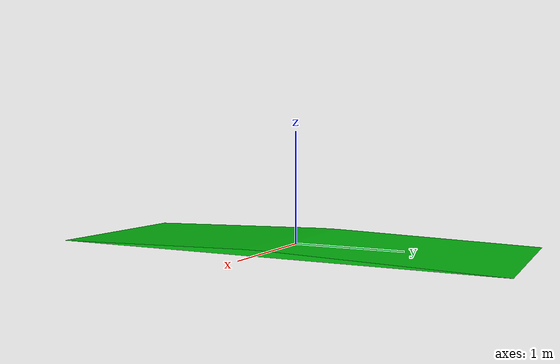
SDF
<?xml version="1.0"?>
<sdf version="1.4">

  <model name="Bump">

    <static>true</static>

    <link name="bump_structure">

      <pose>0 0 0 0 0 0</pose>

      <collision name="bump_collision">
        <geometry>
          <mesh>
            <uri>model://bump/meshes/bump.dae</uri>
          </mesh>
        </geometry>
      </collision>

      <visual name="bump_visual">
        <geometry>
          <mesh>
            <uri>model://bump/meshes/bump.dae</uri>
          </mesh>
        </geometry>
      </visual>

    </link>

  </model>
</sdf>
